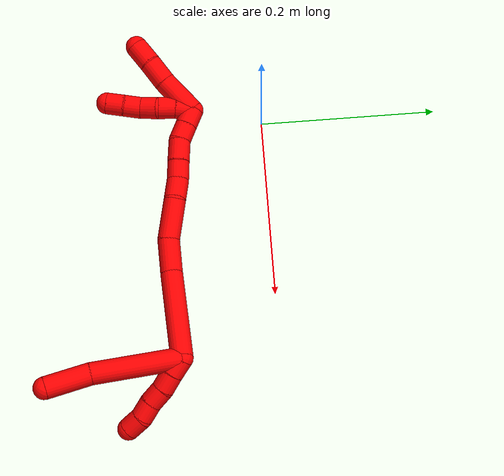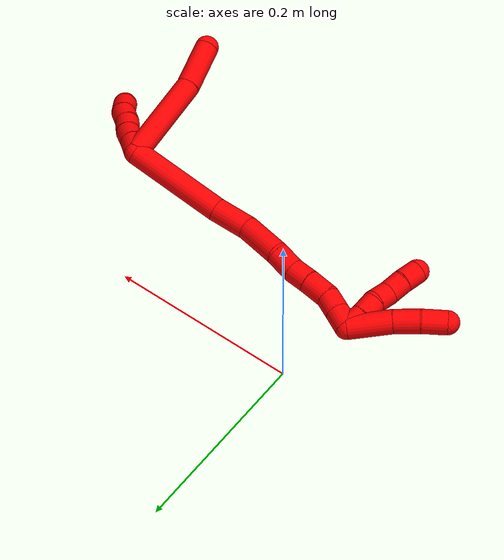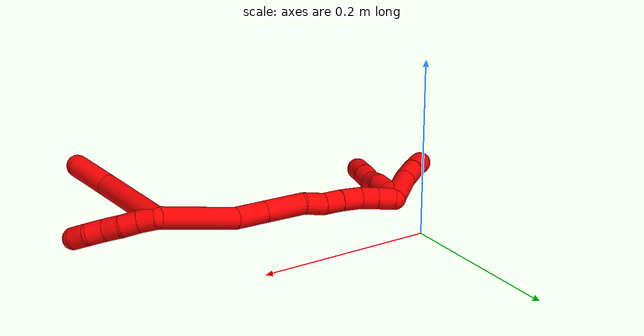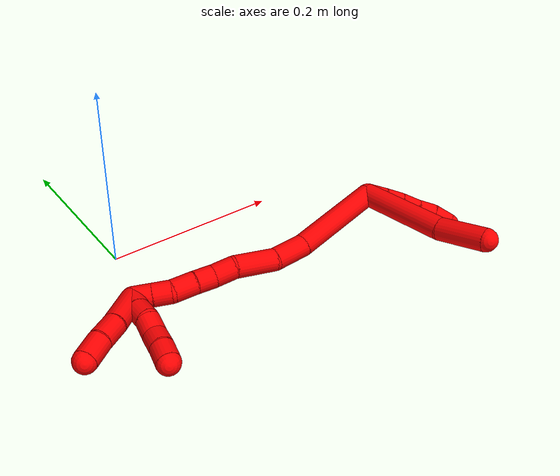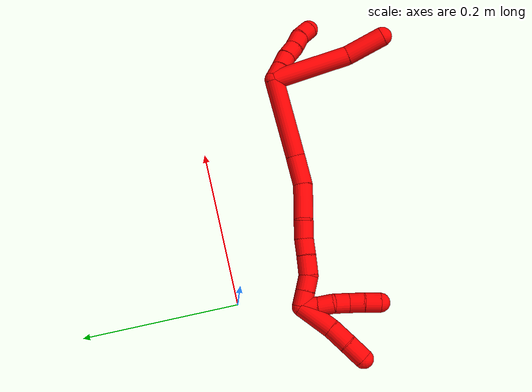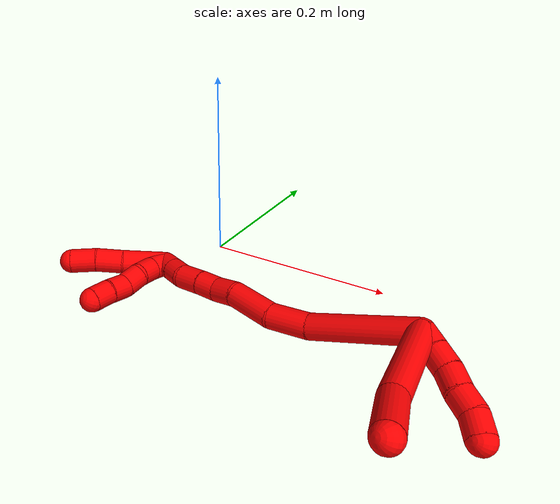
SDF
<sdf version="1.7">
 <world name="default">
  <model name="2">
   <static>0</static>
   <link name="2">
    <collision name="collision-cylinder-e_1_2_8">
     <pose>0.029624 0.001935 0.039736 -0.048669 0.640062 -0.016133</pose>
     <geometry><cylinder><radius>0.0125</radius><length>0.099202</length></cylinder></geometry>
     <surface>
      <friction><ode><mu>1.16</mu><mu2>1.16</mu2><slip1>0</slip1><slip2>0</slip2></ode></friction>
      <contact><ode><kp>1e+06</kp><kd>1</kd><max_vel>0</max_vel><min_depth>0.001</min_depth></ode></contact>
     </surface>
    </collision>
    <visual name="visual-cylinder-e_1_2_8">
     <pose>0.029624 0.001935 0.039736 -0.048669 0.640062 -0.016133</pose>
     <geometry><cylinder><radius>0.0125</radius><length>0.099202</length></cylinder></geometry>
     <material><ambient>1 0 0 1</ambient></material>
    </visual>
    <collision name="collision-cylinder-e_2_8_6">
     <pose>0.074404 0.009807 0.09897 -0.295521 0.639394 -0.098472</pose>
     <geometry><cylinder><radius>0.0125</radius><length>0.050798</length></cylinder></geometry>
     <surface>
      <friction><ode><mu>1.16</mu><mu2>1.16</mu2><slip1>0</slip1><slip2>0</slip2></ode></friction>
      <contact><ode><kp>1e+06</kp><kd>1</kd><max_vel>0</max_vel><min_depth>0.001</min_depth></ode></contact>
     </surface>
    </collision>
    <visual name="visual-cylinder-e_2_8_6">
     <pose>0.074404 0.009807 0.09897 -0.295521 0.639394 -0.098472</pose>
     <geometry><cylinder><radius>0.0125</radius><length>0.050798</length></cylinder></geometry>
     <material><ambient>1 0 0 1</ambient></material>
    </visual>
    <collision name="collision-cylinder-e_1_2_9">
     <pose>0.009493 0.00296 0.001056 -1.22803 1.25111 -0.941924</pose>
     <geometry><cylinder><radius>0.0125</radius><length>0.02</length></cylinder></geometry>
     <surface>
      <friction><ode><mu>1.16</mu><mu2>1.16</mu2><slip1>0</slip1><slip2>0</slip2></ode></friction>
      <contact><ode><kp>1e+06</kp><kd>1</kd><max_vel>0</max_vel><min_depth>0.001</min_depth></ode></contact>
     </surface>
    </collision>
    <visual name="visual-cylinder-e_1_2_9">
     <pose>0.009493 0.00296 0.001056 -1.22803 1.25111 -0.941924</pose>
     <geometry><cylinder><radius>0.0125</radius><length>0.02</length></cylinder></geometry>
     <material><ambient>1 0 0 1</ambient></material>
    </visual>
    <collision name="collision-cylinder-e_2_9_10">
     <pose>0.028614 0.008596 0.002503 -1.4259 1.29697 -1.16014</pose>
     <geometry><cylinder><radius>0.0125</radius><length>0.02</length></cylinder></geometry>
     <surface>
      <friction><ode><mu>1.16</mu><mu2>1.16</mu2><slip1>0</slip1><slip2>0</slip2></ode></friction>
      <contact><ode><kp>1e+06</kp><kd>1</kd><max_vel>0</max_vel><min_depth>0.001</min_depth></ode></contact>
     </surface>
    </collision>
    <visual name="visual-cylinder-e_2_9_10">
     <pose>0.028614 0.008596 0.002503 -1.4259 1.29697 -1.16014</pose>
     <geometry><cylinder><radius>0.0125</radius><length>0.02</length></cylinder></geometry>
     <material><ambient>1 0 0 1</ambient></material>
    </visual>
    <collision name="collision-cylinder-e_3_10_11">
     <pose>0.047911 0.012901 0.004854 -0.693363 1.31303 -0.542998</pose>
     <geometry><cylinder><radius>0.0125</radius><length>0.02</length></cylinder></geometry>
     <surface>
      <friction><ode><mu>1.16</mu><mu2>1.16</mu2><slip1>0</slip1><slip2>0</slip2></ode></friction>
      <contact><ode><kp>1e+06</kp><kd>1</kd><max_vel>0</max_vel><min_depth>0.001</min_depth></ode></contact>
     </surface>
    </collision>
    <visual name="visual-cylinder-e_3_10_11">
     <pose>0.047911 0.012901 0.004854 -0.693363 1.31303 -0.542998</pose>
     <geometry><cylinder><radius>0.0125</radius><length>0.02</length></cylinder></geometry>
     <material><ambient>1 0 0 1</ambient></material>
    </visual>
    <collision name="collision-cylinder-e_4_11_12">
     <pose>0.067197 0.017208 0.007418 -1.3493 1.29275 -1.08596</pose>
     <geometry><cylinder><radius>0.0125</radius><length>0.02</length></cylinder></geometry>
     <surface>
      <friction><ode><mu>1.16</mu><mu2>1.16</mu2><slip1>0</slip1><slip2>0</slip2></ode></friction>
      <contact><ode><kp>1e+06</kp><kd>1</kd><max_vel>0</max_vel><min_depth>0.001</min_depth></ode></contact>
     </surface>
    </collision>
    <visual name="visual-cylinder-e_4_11_12">
     <pose>0.067197 0.017208 0.007418 -1.3493 1.29275 -1.08596</pose>
     <geometry><cylinder><radius>0.0125</radius><length>0.02</length></cylinder></geometry>
     <material><ambient>1 0 0 1</ambient></material>
    </visual>
    <collision name="collision-cylinder-e_5_12_5">
     <pose>0.086478 0.020111 0.010577 -0.088151 1.31129 -0.067819</pose>
     <geometry><cylinder><radius>0.0125</radius><length>0.02</length></cylinder></geometry>
     <surface>
      <friction><ode><mu>1.16</mu><mu2>1.16</mu2><slip1>0</slip1><slip2>0</slip2></ode></friction>
      <contact><ode><kp>1e+06</kp><kd>1</kd><max_vel>0</max_vel><min_depth>0.001</min_depth></ode></contact>
     </surface>
    </collision>
    <visual name="visual-cylinder-e_5_12_5">
     <pose>0.086478 0.020111 0.010577 -0.088151 1.31129 -0.067819</pose>
     <geometry><cylinder><radius>0.0125</radius><length>0.02</length></cylinder></geometry>
     <material><ambient>1 0 0 1</ambient></material>
    </visual>
    <collision name="collision-cylinder-e_1_2_13">
     <pose>-0.021591 -0.043918 0.015238 1.23682 -0.434808 -0.311787</pose>
     <geometry><cylinder><radius>0.0125</radius><length>0.102511</length></cylinder></geometry>
     <surface>
      <friction><ode><mu>1.16</mu><mu2>1.16</mu2><slip1>0</slip1><slip2>0</slip2></ode></friction>
      <contact><ode><kp>1e+06</kp><kd>1</kd><max_vel>0</max_vel><min_depth>0.001</min_depth></ode></contact>
     </surface>
    </collision>
    <visual name="visual-cylinder-e_1_2_13">
     <pose>-0.021591 -0.043918 0.015238 1.23682 -0.434808 -0.311787</pose>
     <geometry><cylinder><radius>0.0125</radius><length>0.102511</length></cylinder></geometry>
     <material><ambient>1 0 0 1</ambient></material>
    </visual>
    <collision name="collision-cylinder-e_2_13_14">
     <pose>-0.054587 -0.102066 0.037836 1.09353 -0.618687 -0.384265</pose>
     <geometry><cylinder><radius>0.0125</radius><length>0.039333</length></cylinder></geometry>
     <surface>
      <friction><ode><mu>1.16</mu><mu2>1.16</mu2><slip1>0</slip1><slip2>0</slip2></ode></friction>
      <contact><ode><kp>1e+06</kp><kd>1</kd><max_vel>0</max_vel><min_depth>0.001</min_depth></ode></contact>
     </surface>
    </collision>
    <visual name="visual-cylinder-e_2_13_14">
     <pose>-0.054587 -0.102066 0.037836 1.09353 -0.618687 -0.384265</pose>
     <geometry><cylinder><radius>0.0125</radius><length>0.039333</length></cylinder></geometry>
     <material><ambient>1 0 0 1</ambient></material>
    </visual>
    <collision name="collision-cylinder-e_3_14_15">
     <pose>-0.083798 -0.130288 0.0502 1.2273 -0.875343 -0.636772</pose>
     <geometry><cylinder><radius>0.0125</radius><length>0.046381</length></cylinder></geometry>
     <surface>
      <friction><ode><mu>1.16</mu><mu2>1.16</mu2><slip1>0</slip1><slip2>0</slip2></ode></friction>
      <contact><ode><kp>1e+06</kp><kd>1</kd><max_vel>0</max_vel><min_depth>0.001</min_depth></ode></contact>
     </surface>
    </collision>
    <visual name="visual-cylinder-e_3_14_15">
     <pose>-0.083798 -0.130288 0.0502 1.2273 -0.875343 -0.636772</pose>
     <geometry><cylinder><radius>0.0125</radius><length>0.046381</length></cylinder></geometry>
     <material><ambient>1 0 0 1</ambient></material>
    </visual>
    <collision name="collision-cylinder-e_4_15_16">
     <pose>-0.108942 -0.15387 0.05667 1.41912 -0.647588 -0.561202</pose>
     <geometry><cylinder><radius>0.0125</radius><length>0.024332</length></cylinder></geometry>
     <surface>
      <friction><ode><mu>1.16</mu><mu2>1.16</mu2><slip1>0</slip1><slip2>0</slip2></ode></friction>
      <contact><ode><kp>1e+06</kp><kd>1</kd><max_vel>0</max_vel><min_depth>0.001</min_depth></ode></contact>
     </surface>
    </collision>
    <visual name="visual-cylinder-e_4_15_16">
     <pose>-0.108942 -0.15387 0.05667 1.41912 -0.647588 -0.561202</pose>
     <geometry><cylinder><radius>0.0125</radius><length>0.024332</length></cylinder></geometry>
     <material><ambient>1 0 0 1</ambient></material>
    </visual>
    <collision name="collision-cylinder-e_5_16_17">
     <pose>-0.123559 -0.170812 0.061292 1.16521 -0.738221 -0.499148</pose>
     <geometry><cylinder><radius>0.0125</radius><length>0.021629</length></cylinder></geometry>
     <surface>
      <friction><ode><mu>1.16</mu><mu2>1.16</mu2><slip1>0</slip1><slip2>0</slip2></ode></friction>
      <contact><ode><kp>1e+06</kp><kd>1</kd><max_vel>0</max_vel><min_depth>0.001</min_depth></ode></contact>
     </surface>
    </collision>
    <visual name="visual-cylinder-e_5_16_17">
     <pose>-0.123559 -0.170812 0.061292 1.16521 -0.738221 -0.499148</pose>
     <geometry><cylinder><radius>0.0125</radius><length>0.021629</length></cylinder></geometry>
     <material><ambient>1 0 0 1</ambient></material>
    </visual>
    <collision name="collision-cylinder-e_6_17_18">
     <pose>-0.139047 -0.187419 0.06765 1.23786 -0.69761 -0.506947</pose>
     <geometry><cylinder><radius>0.0125</radius><length>0.025561</length></cylinder></geometry>
     <surface>
      <friction><ode><mu>1.16</mu><mu2>1.16</mu2><slip1>0</slip1><slip2>0</slip2></ode></friction>
      <contact><ode><kp>1e+06</kp><kd>1</kd><max_vel>0</max_vel><min_depth>0.001</min_depth></ode></contact>
     </surface>
    </collision>
    <visual name="visual-cylinder-e_6_17_18">
     <pose>-0.139047 -0.187419 0.06765 1.23786 -0.69761 -0.506947</pose>
     <geometry><cylinder><radius>0.0125</radius><length>0.025561</length></cylinder></geometry>
     <material><ambient>1 0 0 1</ambient></material>
    </visual>
    <collision name="collision-cylinder-e_7_18_19">
     <pose>-0.154836 -0.203243 0.070411 1.63769 -0.855689 -0.907333</pose>
     <geometry><cylinder><radius>0.0125</radius><length>0.020076</length></cylinder></geometry>
     <surface>
      <friction><ode><mu>1.16</mu><mu2>1.16</mu2><slip1>0</slip1><slip2>0</slip2></ode></friction>
      <contact><ode><kp>1e+06</kp><kd>1</kd><max_vel>0</max_vel><min_depth>0.001</min_depth></ode></contact>
     </surface>
    </collision>
    <visual name="visual-cylinder-e_7_18_19">
     <pose>-0.154836 -0.203243 0.070411 1.63769 -0.855689 -0.907333</pose>
     <geometry><cylinder><radius>0.0125</radius><length>0.020076</length></cylinder></geometry>
     <material><ambient>1 0 0 1</ambient></material>
    </visual>
    <collision name="collision-cylinder-e_8_19_1">
     <pose>-0.17003 -0.216403 0.069413 1.65517 -0.855462 -0.920984</pose>
     <geometry><cylinder><radius>0.0125</radius><length>0.020177</length></cylinder></geometry>
     <surface>
      <friction><ode><mu>1.16</mu><mu2>1.16</mu2><slip1>0</slip1><slip2>0</slip2></ode></friction>
      <contact><ode><kp>1e+06</kp><kd>1</kd><max_vel>0</max_vel><min_depth>0.001</min_depth></ode></contact>
     </surface>
    </collision>
    <visual name="visual-cylinder-e_8_19_1">
     <pose>-0.17003 -0.216403 0.069413 1.65517 -0.855462 -0.920984</pose>
     <geometry><cylinder><radius>0.0125</radius><length>0.020177</length></cylinder></geometry>
     <material><ambient>1 0 0 1</ambient></material>
    </visual>
    <collision name="collision-cylinder-e_1_1_20">
     <pose>-0.181597 -0.23402 0.088718 0.50666 -0.172214 -0.044688</pose>
     <geometry><cylinder><radius>0.0125</radius><length>0.046116</length></cylinder></geometry>
     <surface>
      <friction><ode><mu>1.16</mu><mu2>1.16</mu2><slip1>0</slip1><slip2>0</slip2></ode></friction>
      <contact><ode><kp>1e+06</kp><kd>1</kd><max_vel>0</max_vel><min_depth>0.001</min_depth></ode></contact>
     </surface>
    </collision>
    <visual name="visual-cylinder-e_1_1_20">
     <pose>-0.181597 -0.23402 0.088718 0.50666 -0.172214 -0.044688</pose>
     <geometry><cylinder><radius>0.0125</radius><length>0.046116</length></cylinder></geometry>
     <material><ambient>1 0 0 1</ambient></material>
    </visual>
    <collision name="collision-cylinder-e_2_20_21">
     <pose>-0.189017 -0.252509 0.119604 0.595276 -0.254845 -0.078559</pose>
     <geometry><cylinder><radius>0.0125</radius><length>0.027513</length></cylinder></geometry>
     <surface>
      <friction><ode><mu>1.16</mu><mu2>1.16</mu2><slip1>0</slip1><slip2>0</slip2></ode></friction>
      <contact><ode><kp>1e+06</kp><kd>1</kd><max_vel>0</max_vel><min_depth>0.001</min_depth></ode></contact>
     </surface>
    </collision>
    <visual name="visual-cylinder-e_2_20_21">
     <pose>-0.189017 -0.252509 0.119604 0.595276 -0.254845 -0.078559</pose>
     <geometry><cylinder><radius>0.0125</radius><length>0.027513</length></cylinder></geometry>
     <material><ambient>1 0 0 1</ambient></material>
    </visual>
    <collision name="collision-cylinder-e_3_21_4">
     <pose>-0.194775 -0.268369 0.140532 0.703046 -0.174592 -0.064174</pose>
     <geometry><cylinder><radius>0.0125</radius><length>0.026371</length></cylinder></geometry>
     <surface>
      <friction><ode><mu>1.16</mu><mu2>1.16</mu2><slip1>0</slip1><slip2>0</slip2></ode></friction>
      <contact><ode><kp>1e+06</kp><kd>1</kd><max_vel>0</max_vel><min_depth>0.001</min_depth></ode></contact>
     </surface>
    </collision>
    <visual name="visual-cylinder-e_3_21_4">
     <pose>-0.194775 -0.268369 0.140532 0.703046 -0.174592 -0.064174</pose>
     <geometry><cylinder><radius>0.0125</radius><length>0.026371</length></cylinder></geometry>
     <material><ambient>1 0 0 1</ambient></material>
    </visual>
    <collision name="collision-cylinder-e_1_1_22">
     <pose>-0.173811 -0.224498 0.077968 0.1633 0.393569 0.032626</pose>
     <geometry><cylinder><radius>0.0125</radius><length>0.02</length></cylinder></geometry>
     <surface>
      <friction><ode><mu>1.16</mu><mu2>1.16</mu2><slip1>0</slip1><slip2>0</slip2></ode></friction>
      <contact><ode><kp>1e+06</kp><kd>1</kd><max_vel>0</max_vel><min_depth>0.001</min_depth></ode></contact>
     </surface>
    </collision>
    <visual name="visual-cylinder-e_1_1_22">
     <pose>-0.173811 -0.224498 0.077968 0.1633 0.393569 0.032626</pose>
     <geometry><cylinder><radius>0.0125</radius><length>0.02</length></cylinder></geometry>
     <material><ambient>1 0 0 1</ambient></material>
    </visual>
    <collision name="collision-cylinder-e_2_22_23">
     <pose>-0.164959 -0.226335 0.095724 0.03881 0.525575 0.010441</pose>
     <geometry><cylinder><radius>0.0125</radius><length>0.02</length></cylinder></geometry>
     <surface>
      <friction><ode><mu>1.16</mu><mu2>1.16</mu2><slip1>0</slip1><slip2>0</slip2></ode></friction>
      <contact><ode><kp>1e+06</kp><kd>1</kd><max_vel>0</max_vel><min_depth>0.001</min_depth></ode></contact>
     </surface>
    </collision>
    <visual name="visual-cylinder-e_2_22_23">
     <pose>-0.164959 -0.226335 0.095724 0.03881 0.525575 0.010441</pose>
     <geometry><cylinder><radius>0.0125</radius><length>0.02</length></cylinder></geometry>
     <material><ambient>1 0 0 1</ambient></material>
    </visual>
    <collision name="collision-cylinder-e_3_23_24">
     <pose>-0.154252 -0.229871 0.111944 0.399673 0.605297 0.126314</pose>
     <geometry><cylinder><radius>0.0125</radius><length>0.02</length></cylinder></geometry>
     <surface>
      <friction><ode><mu>1.16</mu><mu2>1.16</mu2><slip1>0</slip1><slip2>0</slip2></ode></friction>
      <contact><ode><kp>1e+06</kp><kd>1</kd><max_vel>0</max_vel><min_depth>0.001</min_depth></ode></contact>
     </surface>
    </collision>
    <visual name="visual-cylinder-e_3_23_24">
     <pose>-0.154252 -0.229871 0.111944 0.399673 0.605297 0.126314</pose>
     <geometry><cylinder><radius>0.0125</radius><length>0.02</length></cylinder></geometry>
     <material><ambient>1 0 0 1</ambient></material>
    </visual>
    <collision name="collision-cylinder-e_4_24_25">
     <pose>-0.144634 -0.234363 0.128624 0.140978 0.403726 0.028897</pose>
     <geometry><cylinder><radius>0.0125</radius><length>0.02</length></cylinder></geometry>
     <surface>
      <friction><ode><mu>1.16</mu><mu2>1.16</mu2><slip1>0</slip1><slip2>0</slip2></ode></friction>
      <contact><ode><kp>1e+06</kp><kd>1</kd><max_vel>0</max_vel><min_depth>0.001</min_depth></ode></contact>
     </surface>
    </collision>
    <visual name="visual-cylinder-e_4_24_25">
     <pose>-0.144634 -0.234363 0.128624 0.140978 0.403726 0.028897</pose>
     <geometry><cylinder><radius>0.0125</radius><length>0.02</length></cylinder></geometry>
     <material><ambient>1 0 0 1</ambient></material>
    </visual>
    <collision name="collision-cylinder-e_5_25_3">
     <pose>-0.136323 -0.238077 0.146385 0.272855 0.453603 0.06334</pose>
     <geometry><cylinder><radius>0.0125</radius><length>0.02</length></cylinder></geometry>
     <surface>
      <friction><ode><mu>1.16</mu><mu2>1.16</mu2><slip1>0</slip1><slip2>0</slip2></ode></friction>
      <contact><ode><kp>1e+06</kp><kd>1</kd><max_vel>0</max_vel><min_depth>0.001</min_depth></ode></contact>
     </surface>
    </collision>
    <visual name="visual-cylinder-e_5_25_3">
     <pose>-0.136323 -0.238077 0.146385 0.272855 0.453603 0.06334</pose>
     <geometry><cylinder><radius>0.0125</radius><length>0.02</length></cylinder></geometry>
     <material><ambient>1 0 0 1</ambient></material>
    </visual>
    <collision name="collision-sphere-3">
     <pose>-0.131941 -0.240499 0.155041 0 -0 0</pose>
     <geometry><sphere><radius>0.0125</radius></sphere></geometry>
     <surface>
      <friction><ode><mu>1.16</mu><mu2>1.16</mu2><slip1>0</slip1><slip2>0</slip2></ode></friction>
      <contact><ode><kp>1e+06</kp><kd>1</kd><max_vel>0</max_vel><min_depth>0.001</min_depth></ode></contact>
     </surface>
    </collision>
    <visual name="visual-sphere-3">
     <pose>-0.131941 -0.240499 0.155041 0 -0 0</pose>
     <geometry><sphere><radius>0.0125</radius></sphere></geometry>
     <material><ambient>1 0 0 1</ambient></material>
    </visual>
    <collision name="collision-sphere-25">
     <pose>-0.140705 -0.235655 0.137728 0 -0 0</pose>
     <geometry><sphere><radius>0.0125</radius></sphere></geometry>
     <surface>
      <friction><ode><mu>1.16</mu><mu2>1.16</mu2><slip1>0</slip1><slip2>0</slip2></ode></friction>
      <contact><ode><kp>1e+06</kp><kd>1</kd><max_vel>0</max_vel><min_depth>0.001</min_depth></ode></contact>
     </surface>
    </collision>
    <visual name="visual-sphere-25">
     <pose>-0.140705 -0.235655 0.137728 0 -0 0</pose>
     <geometry><sphere><radius>0.0125</radius></sphere></geometry>
     <material><ambient>1 0 0 1</ambient></material>
    </visual>
    <collision name="collision-sphere-24">
     <pose>-0.148562 -0.233071 0.119519 0 -0 0</pose>
     <geometry><sphere><radius>0.0125</radius></sphere></geometry>
     <surface>
      <friction><ode><mu>1.16</mu><mu2>1.16</mu2><slip1>0</slip1><slip2>0</slip2></ode></friction>
      <contact><ode><kp>1e+06</kp><kd>1</kd><max_vel>0</max_vel><min_depth>0.001</min_depth></ode></contact>
     </surface>
    </collision>
    <visual name="visual-sphere-24">
     <pose>-0.148562 -0.233071 0.119519 0 -0 0</pose>
     <geometry><sphere><radius>0.0125</radius></sphere></geometry>
     <material><ambient>1 0 0 1</ambient></material>
    </visual>
    <collision name="collision-sphere-23">
     <pose>-0.159942 -0.226671 0.104368 0 -0 0</pose>
     <geometry><sphere><radius>0.0125</radius></sphere></geometry>
     <surface>
      <friction><ode><mu>1.16</mu><mu2>1.16</mu2><slip1>0</slip1><slip2>0</slip2></ode></friction>
      <contact><ode><kp>1e+06</kp><kd>1</kd><max_vel>0</max_vel><min_depth>0.001</min_depth></ode></contact>
     </surface>
    </collision>
    <visual name="visual-sphere-23">
     <pose>-0.159942 -0.226671 0.104368 0 -0 0</pose>
     <geometry><sphere><radius>0.0125</radius></sphere></geometry>
     <material><ambient>1 0 0 1</ambient></material>
    </visual>
    <collision name="collision-sphere-22">
     <pose>-0.169976 -0.226 0.087081 0 -0 0</pose>
     <geometry><sphere><radius>0.0125</radius></sphere></geometry>
     <surface>
      <friction><ode><mu>1.16</mu><mu2>1.16</mu2><slip1>0</slip1><slip2>0</slip2></ode></friction>
      <contact><ode><kp>1e+06</kp><kd>1</kd><max_vel>0</max_vel><min_depth>0.001</min_depth></ode></contact>
     </surface>
    </collision>
    <visual name="visual-sphere-22">
     <pose>-0.169976 -0.226 0.087081 0 -0 0</pose>
     <geometry><sphere><radius>0.0125</radius></sphere></geometry>
     <material><ambient>1 0 0 1</ambient></material>
    </visual>
    <collision name="collision-sphere-4">
     <pose>-0.197065 -0.276764 0.150438 0 -0 0</pose>
     <geometry><sphere><radius>0.0125</radius></sphere></geometry>
     <surface>
      <friction><ode><mu>1.16</mu><mu2>1.16</mu2><slip1>0</slip1><slip2>0</slip2></ode></friction>
      <contact><ode><kp>1e+06</kp><kd>1</kd><max_vel>0</max_vel><min_depth>0.001</min_depth></ode></contact>
     </surface>
    </collision>
    <visual name="visual-sphere-4">
     <pose>-0.197065 -0.276764 0.150438 0 -0 0</pose>
     <geometry><sphere><radius>0.0125</radius></sphere></geometry>
     <material><ambient>1 0 0 1</ambient></material>
    </visual>
    <collision name="collision-sphere-21">
     <pose>-0.192485 -0.259973 0.130627 0 -0 0</pose>
     <geometry><sphere><radius>0.0125</radius></sphere></geometry>
     <surface>
      <friction><ode><mu>1.16</mu><mu2>1.16</mu2><slip1>0</slip1><slip2>0</slip2></ode></friction>
      <contact><ode><kp>1e+06</kp><kd>1</kd><max_vel>0</max_vel><min_depth>0.001</min_depth></ode></contact>
     </surface>
    </collision>
    <visual name="visual-sphere-21">
     <pose>-0.192485 -0.259973 0.130627 0 -0 0</pose>
     <geometry><sphere><radius>0.0125</radius></sphere></geometry>
     <material><ambient>1 0 0 1</ambient></material>
    </visual>
    <collision name="collision-sphere-20">
     <pose>-0.185549 -0.245044 0.108581 0 -0 0</pose>
     <geometry><sphere><radius>0.0125</radius></sphere></geometry>
     <surface>
      <friction><ode><mu>1.16</mu><mu2>1.16</mu2><slip1>0</slip1><slip2>0</slip2></ode></friction>
      <contact><ode><kp>1e+06</kp><kd>1</kd><max_vel>0</max_vel><min_depth>0.001</min_depth></ode></contact>
     </surface>
    </collision>
    <visual name="visual-sphere-20">
     <pose>-0.185549 -0.245044 0.108581 0 -0 0</pose>
     <geometry><sphere><radius>0.0125</radius></sphere></geometry>
     <material><ambient>1 0 0 1</ambient></material>
    </visual>
    <collision name="collision-sphere-11">
     <pose>0.057581 0.01453 0.006815 0 -0 0</pose>
     <geometry><sphere><radius>0.0125</radius></sphere></geometry>
     <surface>
      <friction><ode><mu>1.16</mu><mu2>1.16</mu2><slip1>0</slip1><slip2>0</slip2></ode></friction>
      <contact><ode><kp>1e+06</kp><kd>1</kd><max_vel>0</max_vel><min_depth>0.001</min_depth></ode></contact>
     </surface>
    </collision>
    <visual name="visual-sphere-11">
     <pose>0.057581 0.01453 0.006815 0 -0 0</pose>
     <geometry><sphere><radius>0.0125</radius></sphere></geometry>
     <material><ambient>1 0 0 1</ambient></material>
    </visual>
    <collision name="collision-sphere-10">
     <pose>0.038242 0.011271 0.002893 0 -0 0</pose>
     <geometry><sphere><radius>0.0125</radius></sphere></geometry>
     <surface>
      <friction><ode><mu>1.16</mu><mu2>1.16</mu2><slip1>0</slip1><slip2>0</slip2></ode></friction>
      <contact><ode><kp>1e+06</kp><kd>1</kd><max_vel>0</max_vel><min_depth>0.001</min_depth></ode></contact>
     </surface>
    </collision>
    <visual name="visual-sphere-10">
     <pose>0.038242 0.011271 0.002893 0 -0 0</pose>
     <geometry><sphere><radius>0.0125</radius></sphere></geometry>
     <material><ambient>1 0 0 1</ambient></material>
    </visual>
    <collision name="collision-sphere-6">
     <pose>0.08956 0.015743 0.118468 0 -0 0</pose>
     <geometry><sphere><radius>0.0125</radius></sphere></geometry>
     <surface>
      <friction><ode><mu>1.16</mu><mu2>1.16</mu2><slip1>0</slip1><slip2>0</slip2></ode></friction>
      <contact><ode><kp>1e+06</kp><kd>1</kd><max_vel>0</max_vel><min_depth>0.001</min_depth></ode></contact>
     </surface>
    </collision>
    <visual name="visual-sphere-6">
     <pose>0.08956 0.015743 0.118468 0 -0 0</pose>
     <geometry><sphere><radius>0.0125</radius></sphere></geometry>
     <material><ambient>1 0 0 1</ambient></material>
    </visual>
    <collision name="collision-sphere-9">
     <pose>0.018987 0.00592 0.002112 0 -0 0</pose>
     <geometry><sphere><radius>0.0125</radius></sphere></geometry>
     <surface>
      <friction><ode><mu>1.16</mu><mu2>1.16</mu2><slip1>0</slip1><slip2>0</slip2></ode></friction>
      <contact><ode><kp>1e+06</kp><kd>1</kd><max_vel>0</max_vel><min_depth>0.001</min_depth></ode></contact>
     </surface>
    </collision>
    <visual name="visual-sphere-9">
     <pose>0.018987 0.00592 0.002112 0 -0 0</pose>
     <geometry><sphere><radius>0.0125</radius></sphere></geometry>
     <material><ambient>1 0 0 1</ambient></material>
    </visual>
    <collision name="collision-sphere-2">
     <geometry><sphere><radius>0.0125</radius></sphere></geometry>
     <surface>
      <friction><ode><mu>1.16</mu><mu2>1.16</mu2><slip1>0</slip1><slip2>0</slip2></ode></friction>
      <contact><ode><kp>1e+06</kp><kd>1</kd><max_vel>0</max_vel><min_depth>0.001</min_depth></ode></contact>
     </surface>
    </collision>
    <visual name="visual-sphere-2">
     <geometry><sphere><radius>0.0125</radius></sphere></geometry>
     <material><ambient>1 0 0 1</ambient></material>
    </visual>
    <collision name="collision-sphere-19">
     <pose>-0.162415 -0.20981 0.069971 0 -0 0</pose>
     <geometry><sphere><radius>0.0125</radius></sphere></geometry>
     <surface>
      <friction><ode><mu>1.16</mu><mu2>1.16</mu2><slip1>0</slip1><slip2>0</slip2></ode></friction>
      <contact><ode><kp>1e+06</kp><kd>1</kd><max_vel>0</max_vel><min_depth>0.001</min_depth></ode></contact>
     </surface>
    </collision>
    <visual name="visual-sphere-19">
     <pose>-0.162415 -0.20981 0.069971 0 -0 0</pose>
     <geometry><sphere><radius>0.0125</radius></sphere></geometry>
     <material><ambient>1 0 0 1</ambient></material>
    </visual>
    <collision name="collision-sphere-8">
     <pose>0.059248 0.003871 0.079472 0 -0 0</pose>
     <geometry><sphere><radius>0.0125</radius></sphere></geometry>
     <surface>
      <friction><ode><mu>1.16</mu><mu2>1.16</mu2><slip1>0</slip1><slip2>0</slip2></ode></friction>
      <contact><ode><kp>1e+06</kp><kd>1</kd><max_vel>0</max_vel><min_depth>0.001</min_depth></ode></contact>
     </surface>
    </collision>
    <visual name="visual-sphere-8">
     <pose>0.059248 0.003871 0.079472 0 -0 0</pose>
     <geometry><sphere><radius>0.0125</radius></sphere></geometry>
     <material><ambient>1 0 0 1</ambient></material>
    </visual>
    <collision name="collision-sphere-12">
     <pose>0.076813 0.019885 0.008021 0 -0 0</pose>
     <geometry><sphere><radius>0.0125</radius></sphere></geometry>
     <surface>
      <friction><ode><mu>1.16</mu><mu2>1.16</mu2><slip1>0</slip1><slip2>0</slip2></ode></friction>
      <contact><ode><kp>1e+06</kp><kd>1</kd><max_vel>0</max_vel><min_depth>0.001</min_depth></ode></contact>
     </surface>
    </collision>
    <visual name="visual-sphere-12">
     <pose>0.076813 0.019885 0.008021 0 -0 0</pose>
     <geometry><sphere><radius>0.0125</radius></sphere></geometry>
     <material><ambient>1 0 0 1</ambient></material>
    </visual>
    <collision name="collision-sphere-5">
     <pose>0.096143 0.020337 0.013133 0 -0 0</pose>
     <geometry><sphere><radius>0.0125</radius></sphere></geometry>
     <surface>
      <friction><ode><mu>1.16</mu><mu2>1.16</mu2><slip1>0</slip1><slip2>0</slip2></ode></friction>
      <contact><ode><kp>1e+06</kp><kd>1</kd><max_vel>0</max_vel><min_depth>0.001</min_depth></ode></contact>
     </surface>
    </collision>
    <visual name="visual-sphere-5">
     <pose>0.096143 0.020337 0.013133 0 -0 0</pose>
     <geometry><sphere><radius>0.0125</radius></sphere></geometry>
     <material><ambient>1 0 0 1</ambient></material>
    </visual>
    <collision name="collision-sphere-13">
     <pose>-0.043181 -0.087835 0.030477 0 -0 0</pose>
     <geometry><sphere><radius>0.0125</radius></sphere></geometry>
     <surface>
      <friction><ode><mu>1.16</mu><mu2>1.16</mu2><slip1>0</slip1><slip2>0</slip2></ode></friction>
      <contact><ode><kp>1e+06</kp><kd>1</kd><max_vel>0</max_vel><min_depth>0.001</min_depth></ode></contact>
     </surface>
    </collision>
    <visual name="visual-sphere-13">
     <pose>-0.043181 -0.087835 0.030477 0 -0 0</pose>
     <geometry><sphere><radius>0.0125</radius></sphere></geometry>
     <material><ambient>1 0 0 1</ambient></material>
    </visual>
    <collision name="collision-sphere-14">
     <pose>-0.065993 -0.116297 0.045196 0 -0 0</pose>
     <geometry><sphere><radius>0.0125</radius></sphere></geometry>
     <surface>
      <friction><ode><mu>1.16</mu><mu2>1.16</mu2><slip1>0</slip1><slip2>0</slip2></ode></friction>
      <contact><ode><kp>1e+06</kp><kd>1</kd><max_vel>0</max_vel><min_depth>0.001</min_depth></ode></contact>
     </surface>
    </collision>
    <visual name="visual-sphere-14">
     <pose>-0.065993 -0.116297 0.045196 0 -0 0</pose>
     <geometry><sphere><radius>0.0125</radius></sphere></geometry>
     <material><ambient>1 0 0 1</ambient></material>
    </visual>
    <collision name="collision-sphere-15">
     <pose>-0.101603 -0.144279 0.055204 0 -0 0</pose>
     <geometry><sphere><radius>0.0125</radius></sphere></geometry>
     <surface>
      <friction><ode><mu>1.16</mu><mu2>1.16</mu2><slip1>0</slip1><slip2>0</slip2></ode></friction>
      <contact><ode><kp>1e+06</kp><kd>1</kd><max_vel>0</max_vel><min_depth>0.001</min_depth></ode></contact>
     </surface>
    </collision>
    <visual name="visual-sphere-15">
     <pose>-0.101603 -0.144279 0.055204 0 -0 0</pose>
     <geometry><sphere><radius>0.0125</radius></sphere></geometry>
     <material><ambient>1 0 0 1</ambient></material>
    </visual>
    <collision name="collision-sphere-16">
     <pose>-0.116281 -0.163462 0.058136 0 -0 0</pose>
     <geometry><sphere><radius>0.0125</radius></sphere></geometry>
     <surface>
      <friction><ode><mu>1.16</mu><mu2>1.16</mu2><slip1>0</slip1><slip2>0</slip2></ode></friction>
      <contact><ode><kp>1e+06</kp><kd>1</kd><max_vel>0</max_vel><min_depth>0.001</min_depth></ode></contact>
     </surface>
    </collision>
    <visual name="visual-sphere-16">
     <pose>-0.116281 -0.163462 0.058136 0 -0 0</pose>
     <geometry><sphere><radius>0.0125</radius></sphere></geometry>
     <material><ambient>1 0 0 1</ambient></material>
    </visual>
    <collision name="collision-sphere-17">
     <pose>-0.130837 -0.178162 0.064448 0 -0 0</pose>
     <geometry><sphere><radius>0.0125</radius></sphere></geometry>
     <surface>
      <friction><ode><mu>1.16</mu><mu2>1.16</mu2><slip1>0</slip1><slip2>0</slip2></ode></friction>
      <contact><ode><kp>1e+06</kp><kd>1</kd><max_vel>0</max_vel><min_depth>0.001</min_depth></ode></contact>
     </surface>
    </collision>
    <visual name="visual-sphere-17">
     <pose>-0.130837 -0.178162 0.064448 0 -0 0</pose>
     <geometry><sphere><radius>0.0125</radius></sphere></geometry>
     <material><ambient>1 0 0 1</ambient></material>
    </visual>
    <collision name="collision-sphere-18">
     <pose>-0.147257 -0.196676 0.070851 0 -0 0</pose>
     <geometry><sphere><radius>0.0125</radius></sphere></geometry>
     <surface>
      <friction><ode><mu>1.16</mu><mu2>1.16</mu2><slip1>0</slip1><slip2>0</slip2></ode></friction>
      <contact><ode><kp>1e+06</kp><kd>1</kd><max_vel>0</max_vel><min_depth>0.001</min_depth></ode></contact>
     </surface>
    </collision>
    <visual name="visual-sphere-18">
     <pose>-0.147257 -0.196676 0.070851 0 -0 0</pose>
     <geometry><sphere><radius>0.0125</radius></sphere></geometry>
     <material><ambient>1 0 0 1</ambient></material>
    </visual>
    <collision name="collision-sphere-1">
     <pose>-0.177646 -0.222997 0.068855 0 -0 0</pose>
     <geometry><sphere><radius>0.0125</radius></sphere></geometry>
     <surface>
      <friction><ode><mu>1.16</mu><mu2>1.16</mu2><slip1>0</slip1><slip2>0</slip2></ode></friction>
      <contact><ode><kp>1e+06</kp><kd>1</kd><max_vel>0</max_vel><min_depth>0.001</min_depth></ode></contact>
     </surface>
    </collision>
    <visual name="visual-sphere-1">
     <pose>-0.177646 -0.222997 0.068855 0 -0 0</pose>
     <geometry><sphere><radius>0.0125</radius></sphere></geometry>
     <material><ambient>1 0 0 1</ambient></material>
    </visual>
    <inertial>
     <pose>-0.06179 -0.108252 0.059233 0 -0 0</pose>
     <mass>0.75</mass>
     <inertia>
      <ixx>0.000161</ixx>
      <ixy>0</ixy>
      <ixz>0</ixz>
      <iyy>0.000122</iyy>
      <iyz>0</iyz>
      <izz>0.000119</izz>
     </inertia>
    </inertial>
   </link>
   <pose>0.269588 -0.107472 0.041814 1.01476 0.570942 -0.749927</pose>
  </model>
 </world>
</sdf>
